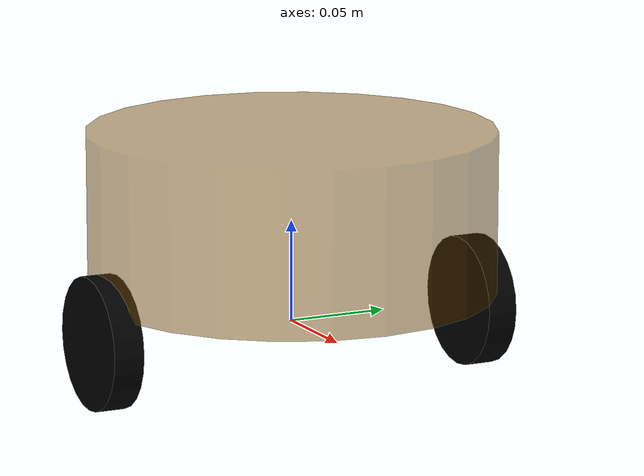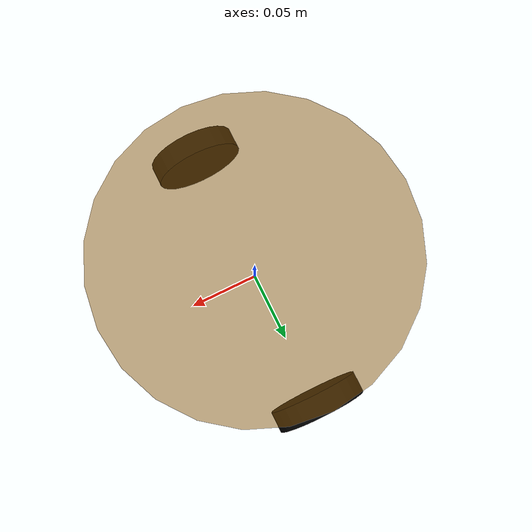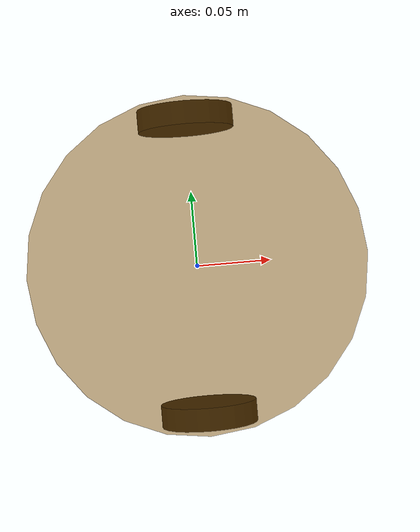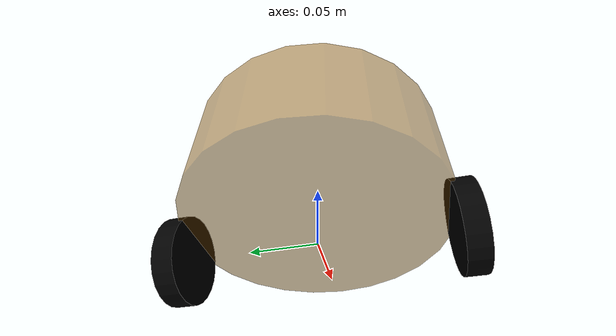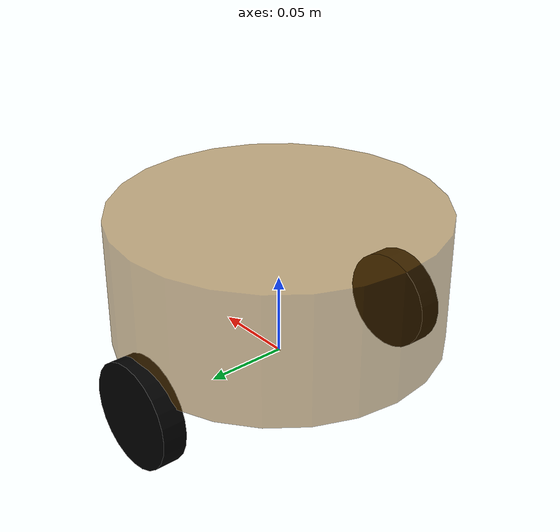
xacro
<robot name="my_base" xmlns:xacro="http://www.ros.org/wiki/xacro">
    <!-- 定义常量（PI）和颜色材料 -->
    <xacro:property name="PI" value="3.141"/>
    <material name="black">
        <color rgba="0.0 0.0 0.0 1.0"/>
    </material>
    <material name="yellow">
        <color rgba="0.5 0.3 0.0 0.5"/>
    </material>

  <!-- 底盘属性 -->
  <xacro:property name="base_footprint_radius" value="0.001"/>
  <xacro:property name="base_link_radius" value="0.1"/>
  <xacro:property name="base_link_length" value="0.08"/>
  <xacro:property name="base_mass" value="2"/>
  <xacro:property name="map_space" value="0.015"/>

  <!--dipanzhongxindian-->
  <link name="base_footprint">
      <visual>
          <geometry>
              <sphere radius="${base_footprint_radius}"/>
          </geometry>
      </visual>
  </link>

  <!--dipan-->
  <link name="base_link">
     <visual>
        <geometry>
            <cylinder radius="${base_link_radius}" length="${base_link_length}"/>
        </geometry>
        <origin xyz="0 0 0" rpy="0 0 0"/>
        <material name="yellow"/>
     </visual>
     <collision>
        <geometry>
            <cylinder radius="${base_link_radius}" length="${base_link_length}"/>
        </geometry>
        <origin xyz="0 0 0" rpy="0 0 0"/>
     </collision>
     <xacro:cylinder_inertial_matrix m="${base_mass}" r="${base_link_radius}" h="${base_link_length}"/>
  </link>
  <!--lunzi-->
  <xacro:property name="wheel_radius" value="0.0325"/>
  <xacro:property name="wheel_length" value="0.015"/>
  <xacro:property name="wheel_mass" value="0.05"/>

  <xacro:macro name="driving_wheels" params="name flag">
    <!-- 驱动轮连杆 -->
    <link name="base_${name}">
        <visual>
            <geometry>
                <cylinder radius="${wheel_radius}" length="${wheel_length}"/>
            </geometry>
            <origin xyz="0 0 0" rpy="${PI/2} 0 0"/>
            <material name="black"/>
        </visual>
        <collision>
            <geometry>
                <cylinder radius="${wheel_radius}" length="${wheel_length}"/>
            </geometry>
            <origin xyz="0 0 0" rpy="${PI/2} 0 0"/>
        </collision>
        <xacro:cylinder_inertial_matrix m="${wheel_mass}" r="${wheel_radius}" h="${wheel_length}"/>
    </link>

    <!-- Gazebo 颜色配置 -->
    <gazebo reference="base_${name}">
        <material>Gazebo/Red</material>
    </gazebo>

    <!-- 驱动轮关节（连续旋转关节） -->
    <joint name="${name}_joint" type="continuous">
        <parent link="base_link"/>
        <child link="base_${name}"/>
        <origin xyz="0 ${flag * base_link_radius} ${-(map_space + base_link_length/2)}"/>
        <axis xyz="0 1 0"/>
    </joint>
 </xacro:macro>
 <xacro:driving_wheels name="left_wheel" flag="1"/>
 <xacro:driving_wheels name="right_wheel" flag="-1"/>

 <gazebo reference="base_link">
    <material>Gazebo/Yellow</material>
 </gazebo>

 <joint name="base_link_to_base_footprint" type="fixed">
    <parent link="base_footprint"/>
    <child link="base_link"/>
    <origin xyz="0 0 ${map_space + base_link_length / 2}"/>
 </joint>
</robot>
